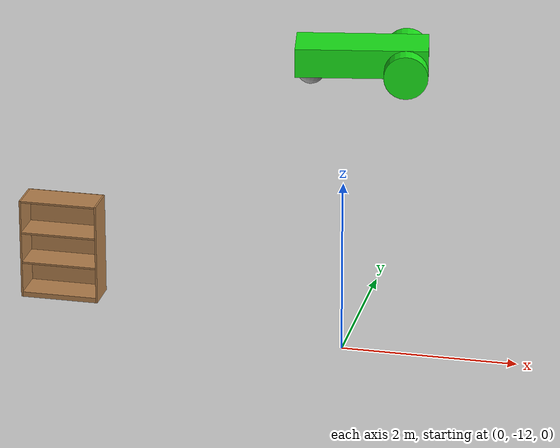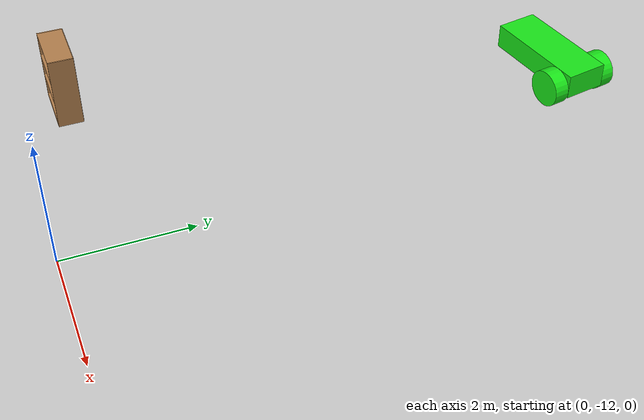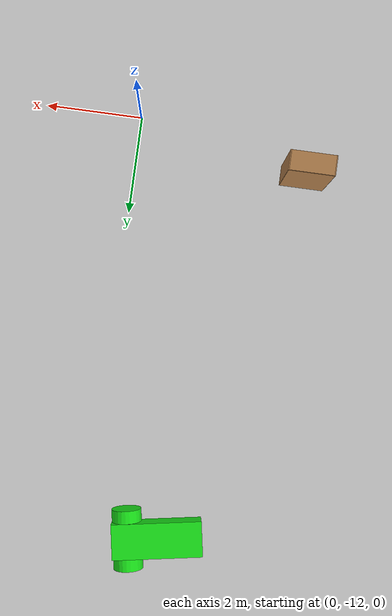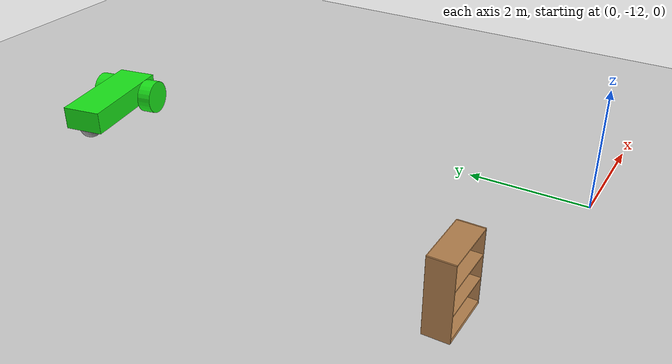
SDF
<sdf version="1.6">
 <world name="default">
  <model name="ground_plane">
   <static>1</static>
   <link name="link">
    <collision name="collision">
     <geometry><plane><normal>0 0 1</normal><size>100 100</size></plane></geometry>
     <surface><friction><ode><mu>100</mu><mu2>50</mu2></ode></friction></surface>
    </collision>
    <visual name="visual">
     <cast_shadows>0</cast_shadows>
     <geometry><plane><normal>0 0 1</normal><size>100 100</size></plane></geometry>
     <material>
      <script><uri>file://media/materials/scripts/gazebo.material</uri><name>Gazebo/Grey</name></script>
     </material>
    </visual>
   </link>
  </model>
  <model name="Vehicle_0">
   <link name="link_0_clone">
    <pose>0 -0 0.4 0 -0 0</pose>
    <inertial>
     <mass>8.4072</mass>
     <inertia><ixx>0.444437</ixx><ixy>0</ixy><ixz>0</ixz><iyy>1.39419</iyy><iyz>0</iyz><izz>1.60581</izz></inertia>
    </inertial>
    <visual name="visual">
     <geometry><box><size>1.8 0.7 0.4</size></box></geometry>
     <material>
      <lighting>1</lighting>
      <script><uri>file://media/materials/scripts/gazebo.material</uri><name>Gazebo/Grey</name></script>
      <shader type="pixel"><normal_map>__default__</normal_map></shader>
      <ambient>0.3 0.3 0.3 1</ambient>
      <diffuse>0.1 0.9 0.1 1</diffuse>
      <specular>0.01 0.01 0.01 1</specular>
      <emissive>0 0 0 1</emissive>
     </material>
    </visual>
    <collision name="collision">
     <geometry><box><size>1.8 0.7 0.4</size></box></geometry>
     <surface>
      <friction>
       <ode><mu>1</mu><mu2>1</mu2><fdir1>0 0 0</fdir1><slip1>0</slip1><slip2>0</slip2></ode>
       <torsional>
        <coefficient>1</coefficient>
        <patch_radius>0</patch_radius>
        <surface_radius>0</surface_radius>
        <use_patch_radius>1</use_patch_radius>
        <ode><slip>0</slip></ode>
       </torsional>
      </friction>
      <bounce><restitution_coefficient>0</restitution_coefficient><threshold>1e+06</threshold></bounce>
      <contact>
       <collide_without_contact>0</collide_without_contact>
       <collide_without_contact_bitmask>1</collide_without_contact_bitmask>
       <collide_bitmask>1</collide_bitmask>
       <ode>
        <soft_cfm>0</soft_cfm>
        <soft_erp>0.2</soft_erp>
        <kp>1e+13</kp>
        <kd>1</kd>
        <max_vel>0.01</max_vel>
        <min_depth>0</min_depth>
       </ode>
       <bullet>
        <split_impulse>1</split_impulse>
        <split_impulse_penetration_threshold>-0.01</split_impulse_penetration_threshold>
        <soft_cfm>0</soft_cfm>
        <soft_erp>0.2</soft_erp>
        <kp>1e+13</kp>
        <kd>1</kd>
       </bullet>
      </contact>
     </surface>
    </collision>
   </link>
   <link name="link_0">
    <pose>0.6 0.467205 0.3 1.5707 0.03 0</pose>
    <inertial>
     <mass>1</mass>
     <inertia><ixx>0.145833</ixx><ixy>0</ixy><ixz>0</ixz><iyy>0.145833</iyy><iyz>0</iyz><izz>0.125</izz></inertia>
    </inertial>
    <visual name="visual">
     <geometry><cylinder><radius>0.3</radius><length>0.25</length></cylinder></geometry>
     <material>
      <lighting>1</lighting>
      <script><uri>file://media/materials/scripts/gazebo.material</uri><name>Gazebo/Grey</name></script>
      <shader type="pixel"><normal_map>__default__</normal_map></shader>
      <ambient>0.3 0.3 0.3 1</ambient>
      <diffuse>0.1 0.9 0.1 1</diffuse>
      <specular>0.01 0.01 0.01 1</specular>
      <emissive>0 0 0 1</emissive>
     </material>
    </visual>
    <collision name="collision">
     <geometry><cylinder><radius>0.3</radius><length>0.25</length></cylinder></geometry>
     <surface>
      <friction>
       <ode><mu>1</mu><mu2>1</mu2><fdir1>0 0 0</fdir1><slip1>0</slip1><slip2>0</slip2></ode>
       <torsional>
        <coefficient>1</coefficient>
        <patch_radius>0</patch_radius>
        <surface_radius>0</surface_radius>
        <use_patch_radius>1</use_patch_radius>
        <ode><slip>0</slip></ode>
       </torsional>
      </friction>
      <bounce><restitution_coefficient>0</restitution_coefficient><threshold>1e+06</threshold></bounce>
      <contact>
       <collide_without_contact>0</collide_without_contact>
       <collide_without_contact_bitmask>1</collide_without_contact_bitmask>
       <collide_bitmask>1</collide_bitmask>
       <ode>
        <soft_cfm>0</soft_cfm>
        <soft_erp>0.2</soft_erp>
        <kp>1e+13</kp>
        <kd>1</kd>
        <max_vel>0.01</max_vel>
        <min_depth>0</min_depth>
       </ode>
       <bullet>
        <split_impulse>1</split_impulse>
        <split_impulse_penetration_threshold>-0.01</split_impulse_penetration_threshold>
        <soft_cfm>0</soft_cfm>
        <soft_erp>0.2</soft_erp>
        <kp>1e+13</kp>
        <kd>1</kd>
       </bullet>
      </contact>
     </surface>
    </collision>
   </link>
   <link name="link_0_0">
    <pose>-0.690774 0.00168 0.2 -0.031665 0.139995 0.005148</pose>
    <inertial>
     <mass>1</mass>
     <inertia><ixx>0.1</ixx><ixy>0</ixy><ixz>0</ixz><iyy>0.1</iyy><iyz>0</iyz><izz>0.1</izz></inertia>
    </inertial>
    <visual name="visual">
     <geometry><sphere><radius>0.2</radius></sphere></geometry>
     <material>
      <lighting>1</lighting>
      <script><uri>file://media/materials/scripts/gazebo.material</uri><name>Gazebo/Grey</name></script>
      <shader type="pixel"><normal_map>__default__</normal_map></shader>
      <ambient>0.3 0.3 0.3 1</ambient>
      <diffuse>0.7 0.7 0.7 1</diffuse>
      <specular>0.01 0.01 0.01 1</specular>
      <emissive>0 0 0 1</emissive>
     </material>
    </visual>
    <collision name="collision">
     <geometry><sphere><radius>0.2</radius></sphere></geometry>
     <surface>
      <friction>
       <ode><mu>1</mu><mu2>1</mu2><fdir1>0 0 0</fdir1><slip1>0</slip1><slip2>0</slip2></ode>
       <torsional>
        <coefficient>1</coefficient>
        <patch_radius>0</patch_radius>
        <surface_radius>0</surface_radius>
        <use_patch_radius>1</use_patch_radius>
        <ode><slip>0</slip></ode>
       </torsional>
      </friction>
      <bounce><restitution_coefficient>0</restitution_coefficient><threshold>1e+06</threshold></bounce>
      <contact>
       <collide_without_contact>0</collide_without_contact>
       <collide_without_contact_bitmask>1</collide_without_contact_bitmask>
       <collide_bitmask>1</collide_bitmask>
       <ode>
        <soft_cfm>0</soft_cfm>
        <soft_erp>0.2</soft_erp>
        <kp>1e+13</kp>
        <kd>1</kd>
        <max_vel>0.01</max_vel>
        <min_depth>0</min_depth>
       </ode>
       <bullet>
        <split_impulse>1</split_impulse>
        <split_impulse_penetration_threshold>-0.01</split_impulse_penetration_threshold>
        <soft_cfm>0</soft_cfm>
        <soft_erp>0.2</soft_erp>
        <kp>1e+13</kp>
        <kd>1</kd>
       </bullet>
      </contact>
     </surface>
    </collision>
   </link>
   <link name="link_0_clone_0">
    <pose>0.6 -0.475029 0.3 1.5707 -0 0</pose>
    <inertial>
     <mass>1</mass>
     <inertia><ixx>0.145833</ixx><ixy>0</ixy><ixz>0</ixz><iyy>0.145833</iyy><iyz>0</iyz><izz>0.125</izz></inertia>
    </inertial>
    <visual name="visual">
     <geometry><cylinder><radius>0.3</radius><length>0.25</length></cylinder></geometry>
     <material>
      <lighting>1</lighting>
      <script><uri>file://media/materials/scripts/gazebo.material</uri><name>Gazebo/Grey</name></script>
      <shader type="pixel"><normal_map>__default__</normal_map></shader>
      <ambient>0.3 0.3 0.3 1</ambient>
      <diffuse>0.1 0.9 0.1 1</diffuse>
      <specular>0.01 0.01 0.01 1</specular>
      <emissive>0 0 0 1</emissive>
     </material>
    </visual>
    <collision name="collision">
     <geometry><cylinder><radius>0.3</radius><length>0.25</length></cylinder></geometry>
     <surface>
      <friction>
       <ode><mu>1</mu><mu2>1</mu2><fdir1>0 0 0</fdir1><slip1>0</slip1><slip2>0</slip2></ode>
       <torsional>
        <coefficient>1</coefficient>
        <patch_radius>0</patch_radius>
        <surface_radius>0</surface_radius>
        <use_patch_radius>1</use_patch_radius>
        <ode><slip>0</slip></ode>
       </torsional>
      </friction>
      <bounce><restitution_coefficient>0</restitution_coefficient><threshold>1e+06</threshold></bounce>
      <contact>
       <collide_without_contact>0</collide_without_contact>
       <collide_without_contact_bitmask>1</collide_without_contact_bitmask>
       <collide_bitmask>1</collide_bitmask>
       <ode>
        <soft_cfm>0</soft_cfm>
        <soft_erp>0.2</soft_erp>
        <kp>1e+13</kp>
        <kd>1</kd>
        <max_vel>0.01</max_vel>
        <min_depth>0</min_depth>
       </ode>
       <bullet>
        <split_impulse>1</split_impulse>
        <split_impulse_penetration_threshold>-0.01</split_impulse_penetration_threshold>
        <soft_cfm>0</soft_cfm>
        <soft_erp>0.2</soft_erp>
        <kp>1e+13</kp>
        <kd>1</kd>
       </bullet>
      </contact>
     </surface>
    </collision>
   </link>
   <joint name="link_0_clone_JOINT_0_0" type="ball">
    <parent>link_0_clone</parent>
    <child>link_0_0</child>
    <physics>
     <ode><limit><cfm>0</cfm><erp>0.2</erp></limit><suspension><cfm>0</cfm><erp>0.2</erp></suspension></ode>
    </physics>
   </joint>
   <joint name="link_0_clone_JOINT_0" type="revolute">
    <parent>link_0_clone</parent>
    <child>link_0</child>
    <axis>
     <xyz>0 0 1</xyz>
     <use_parent_model_frame>0</use_parent_model_frame>
     <limit>
      <lower>-1.79769e+308</lower>
      <upper>1.79769e+308</upper>
      <effort>-1</effort>
      <velocity>-1</velocity>
     </limit>
     <dynamics>
      <spring_reference>0</spring_reference>
      <spring_stiffness>0</spring_stiffness>
      <damping>0</damping>
      <friction>0</friction>
     </dynamics>
    </axis>
    <physics>
     <ode><limit><cfm>0</cfm><erp>0.2</erp></limit><suspension><cfm>0</cfm><erp>0.2</erp></suspension></ode>
    </physics>
   </joint>
   <joint name="link_0_clone_JOINT_1" type="revolute">
    <parent>link_0_clone</parent>
    <child>link_0_clone_0</child>
    <axis>
     <xyz>0 0 1</xyz>
     <use_parent_model_frame>0</use_parent_model_frame>
     <limit>
      <lower>-1.79769e+308</lower>
      <upper>1.79769e+308</upper>
      <effort>-1</effort>
      <velocity>-1</velocity>
     </limit>
     <dynamics>
      <spring_reference>0</spring_reference>
      <spring_stiffness>0</spring_stiffness>
      <damping>0</damping>
      <friction>0</friction>
     </dynamics>
    </axis>
    <physics>
     <ode><limit><cfm>0</cfm><erp>0.2</erp></limit><suspension><cfm>0</cfm><erp>0.2</erp></suspension></ode>
    </physics>
   </joint>
   <static>0</static>
   <pose>-1.49886 -3.47398 3e-06 1e-06 -1.5e-05 0.173284</pose>
  </model>
  <model name="bookshelf">
   <static>1</static>
   <link name="link">
    <inertial><mass>1</mass></inertial>
    <collision name="back">
     <pose>0 0.005 0.6 0 -0 0</pose>
     <geometry><box><size>0.9 0.01 1.2</size></box></geometry>
    </collision>
    <visual name="visual1">
     <pose>0 0.005 0.6 0 -0 0</pose>
     <geometry><box><size>0.9 0.01 1.2</size></box></geometry>
     <material>
      <script><uri>file://media/materials/scripts/gazebo.material</uri><name>Gazebo/Wood</name></script>
     </material>
    </visual>
    <collision name="left_side">
     <pose>0.45 -0.195 0.6 0 -0 0</pose>
     <geometry><box><size>0.02 0.4 1.2</size></box></geometry>
    </collision>
    <visual name="visual2">
     <pose>0.45 -0.195 0.6 0 -0 0</pose>
     <geometry><box><size>0.02 0.4 1.2</size></box></geometry>
     <material>
      <script><uri>file://media/materials/scripts/gazebo.material</uri><name>Gazebo/Wood</name></script>
     </material>
    </visual>
    <collision name="right_side">
     <pose>-0.45 -0.195 0.6 0 -0 0</pose>
     <geometry><box><size>0.02 0.4 1.2</size></box></geometry>
    </collision>
    <visual name="visual3">
     <pose>-0.45 -0.195 0.6 0 -0 0</pose>
     <geometry><box><size>0.02 0.4 1.2</size></box></geometry>
     <material>
      <script><uri>file://media/materials/scripts/gazebo.material</uri><name>Gazebo/Wood</name></script>
     </material>
    </visual>
    <collision name="bottom">
     <pose>0 -0.195 0.03 0 -0 0</pose>
     <geometry><box><size>0.88 0.4 0.06</size></box></geometry>
    </collision>
    <visual name="visual4">
     <pose>0 -0.195 0.03 0 -0 0</pose>
     <geometry><box><size>0.88 0.4 0.06</size></box></geometry>
     <material>
      <script><uri>file://media/materials/scripts/gazebo.material</uri><name>Gazebo/Wood</name></script>
     </material>
    </visual>
    <collision name="top">
     <pose>0 -0.195 1.19 0 -0 0</pose>
     <geometry><box><size>0.88 0.4 0.02</size></box></geometry>
    </collision>
    <visual name="visual5">
     <pose>0 -0.195 1.19 0 -0 0</pose>
     <geometry><box><size>0.88 0.4 0.02</size></box></geometry>
     <material>
      <script><uri>file://media/materials/scripts/gazebo.material</uri><name>Gazebo/Wood</name></script>
     </material>
    </visual>
    <collision name="low_shelf">
     <pose>0 -0.195 0.43 0 -0 0</pose>
     <geometry><box><size>0.88 0.4 0.02</size></box></geometry>
    </collision>
    <visual name="visual6">
     <pose>0 -0.195 0.43 0 -0 0</pose>
     <geometry><box><size>0.88 0.4 0.02</size></box></geometry>
     <material>
      <script><uri>file://media/materials/scripts/gazebo.material</uri><name>Gazebo/Wood</name></script>
     </material>
    </visual>
    <collision name="high_shelf">
     <pose>0 -0.195 0.8 0 -0 0</pose>
     <geometry><box><size>0.88 0.4 0.02</size></box></geometry>
    </collision>
    <visual name="visual7">
     <pose>0 -0.195 0.8 0 -0 0</pose>
     <geometry><box><size>0.88 0.4 0.02</size></box></geometry>
     <material>
      <script><uri>file://media/materials/scripts/gazebo.material</uri><name>Gazebo/Wood</name></script>
     </material>
    </visual>
   </link>
   <pose>-3.49645 -10.9971 0 0 -0 0</pose>
  </model>
 </world>
</sdf>
